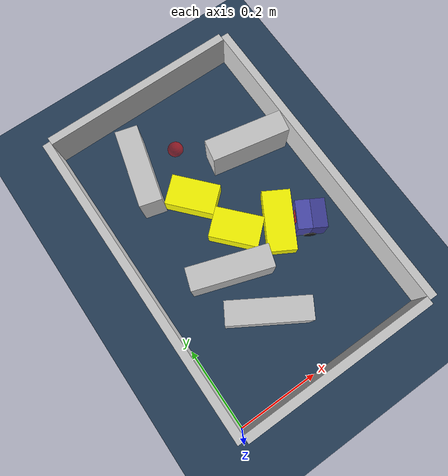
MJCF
<?xml version='1.0' encoding='utf-8'?>
<mujoco model="real_buildable">
  <compiler angle="degree" />
  <option timestep="0.002" integrator="implicitfast" iterations="100" cone="elliptic" />
  <default>
    <geom density="1" />
  </default>
  <asset>
    <texture builtin="gradient" height="3072" rgb1="0.3 0.5 0.7" rgb2="0 0 0" type="skybox" width="512" />
    <texture builtin="checker" height="300" mark="edge" markrgb="0.8 0.8 0.8" name="groundplane" rgb1="0.2 0.3 0.4" rgb2="0.1 0.2 0.3" type="2d" width="300" />
    <material name="groundplane" reflectance="0.2" texrepeat="5 5" texture="groundplane" texuniform="true" />
  </asset>
  <worldbody>
    <light dir="0 0 -1" directional="true" pos="0 0 1.5" />
    <geom name="floor" type="plane" condim="4" friction="0.5 0.005 0.001" material="groundplane" size="0 0 0.05" />
    <body name="walls">
      <geom name="wall_boundary_left" type="box" condim="4" friction="1.0 0.005 0.0001" rgba="0.8 0.8 0.8 1" pos="-0.010000 0.387500 0.050000" euler="0 0 0.000000" size="0.010000 0.397500 0.050000" />
      <geom name="wall_boundary_right" type="box" condim="4" friction="1.0 0.005 0.0001" rgba="0.8 0.8 0.8 1" pos="0.500000 0.387500 0.050000" euler="0 0 0.000000" size="0.010000 0.397500 0.050000" />
      <geom name="wall_boundary_bottom" type="box" condim="4" friction="1.0 0.005 0.0001" rgba="0.8 0.8 0.8 1" pos="0.245000 -0.010000 0.050000" euler="0 0 0.000000" size="0.245000 0.010000 0.050000" />
      <geom name="wall_boundary_top" type="box" condim="4" friction="1.0 0.005 0.0001" rgba="0.8 0.8 0.8 1" pos="0.245000 0.785000 0.050000" euler="0 0 0.000000" size="0.245000 0.010000 0.050000" />
      <geom name="wall_inner_1" type="box" condim="4" friction="1.0 0.005 0.0001" rgba="0.8 0.8 0.8 1" pos="0.191549 0.172272 0.050000" euler="0 0 -31.119121" size="0.097500 0.027500 0.050000" />
      <geom name="wall_inner_2" type="box" condim="4" friction="1.0 0.005 0.0001" rgba="0.8 0.8 0.8 1" pos="0.176347 0.297541 0.050000" euler="0 0 -18.430544" size="0.097500 0.027500 0.050000" />
      <geom name="wall_inner_3" type="box" condim="4" friction="1.0 0.005 0.0001" rgba="0.8 0.8 0.8 1" pos="0.389000 0.532000 0.050000" euler="0 0 169.000000" size="0.097500 0.027500 0.050000" />
      <geom name="wall_inner_4" type="box" condim="4" friction="1.0 0.005 0.0001" rgba="0.8 0.8 0.8 1" pos="0.138000 0.616000 0.050000" euler="0 0 75.000000" size="0.097500 0.027500 0.050000" />
    </body>
    <body name="car" pos="0.40294625798406553 0.29533338127980219 0.01" quat="0.25721500712958167 0 0 0.96635420012919138">
      <freejoint name="car_freejoint" />
      <inertial pos="0 0 0.0375" mass="0.35" diaginertia="0.000266 0.000266 0.000286" />
      <geom name="front_chassis_collision" type="box" pos="0.0175 0 0.0375" size="0.0175 0.035 0.0325" rgba="0.3 0.3 0.7 1" />
      <geom name="rear_chassis_collision" type="box" pos="-0.0175 0 0.0375" size="0.0175 0.035 0.0325" rgba="0.25 0.25 0.6 1" />
      <geom name="front_marker" type="box" pos="0.034 0 0.0505" size="0.002 0.015 0.01" rgba="1 0.2 0.2 1" contype="0" conaffinity="0" />
      <body name="rear_support_body" pos="-0.03 0 0.0025">
        <joint name="rear_caster_joint" type="ball" damping="0.0001" />
        <inertial pos="0 0 0" mass="0.025" diaginertia="0.000001 0.000001 0.000001" />
        <geom name="rear_support" type="sphere" pos="0 0 0" size="0.0025" friction="0 0 0" rgba="0.7 0.1 0.1 1" />
      </body>
      <body name="front_support_body" pos="0.03 0 0.0025">
        <joint name="front_caster_joint" type="ball" damping="0.0001" />
        <inertial pos="0 0 0" mass="0.025" diaginertia="0.000001 0.000001 0.000001" />
        <geom name="front_support" type="sphere" pos="0 0 0" size="0.0025" friction="0 0 0" rgba="0.1 0.7 0.1 1" />
      </body>
      <body name="left_wheel" pos="0 0.0375 0.015">
        <inertial pos="0 0 0" mass="0.05" diaginertia="0.000003 0.000006 0.000003" />
        <joint name="left_wheel_joint" type="hinge" axis="0 1 0" damping="0.01" armature="0.0001" />
        <geom name="left_wheel_collision" type="cylinder" size="0.015 0.0005" euler="90 0 0" rgba="0.1 0.1 0.1 1" />
      </body>
      <body name="right_wheel" pos="0 -0.0375 0.015">
        <inertial pos="0 0 0" mass="0.05" diaginertia="0.000003 0.000006 0.000003" />
        <joint name="right_wheel_joint" type="hinge" axis="0 1 0" damping="0.01" armature="0.0001" />
        <geom name="right_wheel_collision" type="cylinder" size="0.015 0.0005" euler="90 0 0" rgba="0.1 0.1 0.1 1" />
      </body>
    </body>
    <body name="obstacle_0_movable">
      <geom name="obstacle_0_movable" condim="4" pos="0.34268468879094222 0.33147913296794501 0.02" friction="1 0.005 0.0001" rgba="1 1 0 1" size="0.035000 0.075000 0.020000" type="box" mass="0.1" quat="0.25535043936643359 0 0 0.96684856783023132" />
      <joint type="free" />
    </body>
    <body name="obstacle_1_movable">
      <geom name="obstacle_1_movable" condim="4" pos="0.20844259500509593 0.50024507946740449 0.025000000000000001" friction="1 0.005 0.0001" rgba="1 1 0 1" size="0.037500 0.060000 0.025000" type="box" mass="0.1" quat="0.93438574825056997 0 0 0.35626292743733862" />
      <joint type="free" />
    </body>
    <body name="obstacle_2_movable">
      <geom name="obstacle_2_movable" condim="4" pos="0.2484507522443018 0.37493612886381383 0.025000000000000001" friction="1 0.005 0.0001" rgba="1 1 0 1" size="0.037500 0.060000 0.025000" type="box" mass="0.1" quat="0.93256770546082113 0 0 0.36099511732368222" />
      <joint type="free" />
    </body>
    <site name="goal" type="sphere" pos="0.245000 0.640000 0.0" size="0.02" rgba="1 0 0 0.5" />
  </worldbody>
  <actuator>
    <velocity name="left_wheel_drive" joint="left_wheel_joint" ctrlrange="-25 25" kv="0.75" forcerange="-0.5 0.5" />
    <velocity name="right_wheel_drive" joint="right_wheel_joint" ctrlrange="-25 25" kv="0.75" forcerange="-0.5 0.5" />
  </actuator>
</mujoco>
